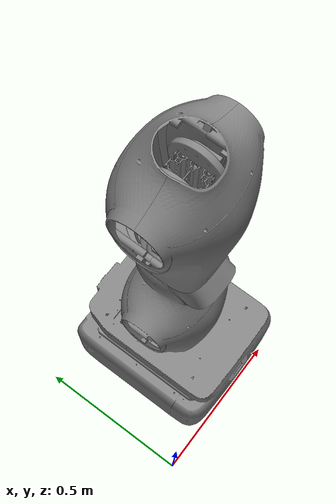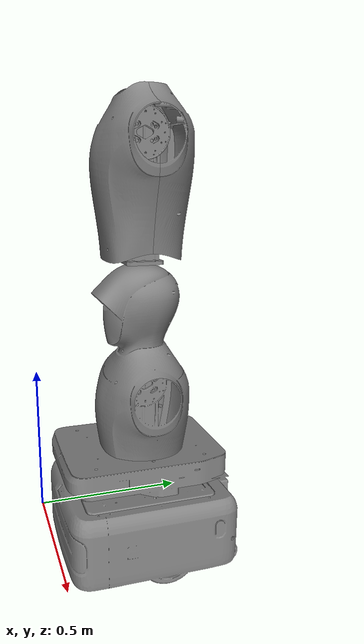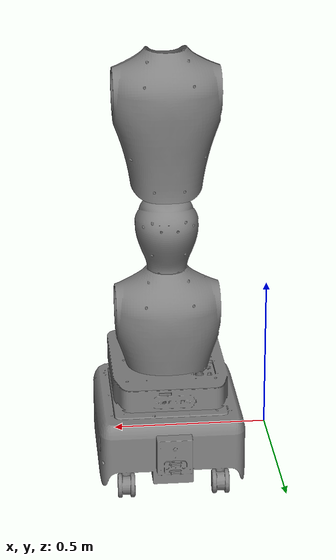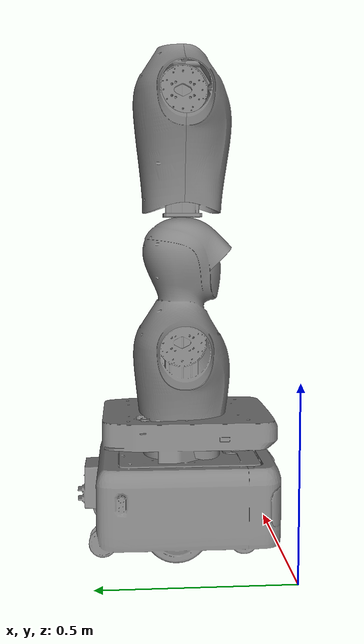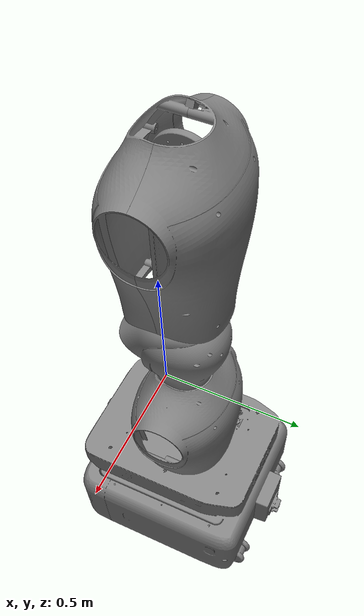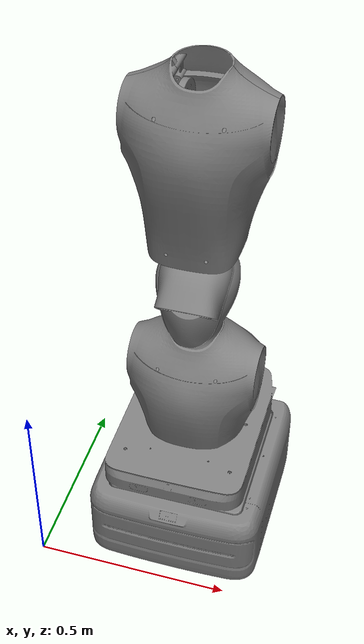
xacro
<?xml version="1.0"?>
<robot xmlns:xacro="http://ros.org/wiki/xacro" name="dual_ar5_torso">
  <material name="torso_grey">
    <color rgba="0.5 0.5 0.5 1.0"/>
  </material>

  <link name="torso_base_link">
    <!-- Body -->
    <visual>
      <origin xyz="0.348435 0.2626025 0.210286" rpy="0 0 0"/>
      <geometry>
        <mesh filename="file:///home/omen/Downloads/ar5_l6/meshes/body/lm0310_body.stl" scale="0.001 0.001 0.001"/>
      </geometry>
      <material name="torso_grey"/>
    </visual>
    <collision>
      <origin xyz="0.348435 0.2626025 0.210286" rpy="0 0 0"/>
      <geometry>
        <mesh filename="file:///home/omen/Downloads/ar5_l6/meshes/body/lm0310_body.stl" scale="0.001 0.001 0.001"/>
      </geometry>
    </collision>

    <!-- Wheelbase -->
    <visual>
      <origin xyz="0 0 0" rpy="0 0 0"/>
      <geometry>
        <mesh filename="file:///home/omen/Downloads/ar5_l6/meshes/body/lm0310_wheelbase.stl" scale="0.001 0.001 0.001"/>
      </geometry>
      <material name="torso_grey"/>
    </visual>
    <collision>
      <origin xyz="0 0 0" rpy="0 0 0"/>
      <geometry>
        <mesh filename="file:///home/omen/Downloads/ar5_l6/meshes/body/lm0310_wheelbase.stl" scale="0.001 0.001 0.001"/>
      </geometry>
    </collision>

    <!-- Base Plate -->
    <visual>
      <origin xyz="0 0 0" rpy="0 0 0"/>
      <geometry>
        <mesh filename="file:///home/omen/Downloads/ar5_l6/meshes/body/lm0310_base_plate.STL" scale="0.001 0.001 0.001"/>
      </geometry>
      <material name="torso_grey"/>
    </visual>
    <collision>
      <origin xyz="0 0 0" rpy="0 0 0"/>
      <geometry>
        <mesh filename="file:///home/omen/Downloads/ar5_l6/meshes/body/lm0310_base_plate.STL" scale="0.001 0.001 0.001"/>
      </geometry>
    </collision>

    <!-- Column -->
    <visual>
      <origin xyz="0 0 0" rpy="0 0 0"/>
      <geometry>
        <mesh filename="file:///home/omen/Downloads/ar5_l6/meshes/body/lm0310_column.STL" scale="0.001 0.001 0.001"/>
      </geometry>
      <material name="torso_grey"/>
    </visual>
    <collision>
      <origin xyz="0 0 0" rpy="0 0 0"/>
      <geometry>
        <mesh filename="file:///home/omen/Downloads/ar5_l6/meshes/body/lm0310_column.STL" scale="0.001 0.001 0.001"/>
      </geometry>
    </collision>

    <!-- Chest Back -->
    <visual>
      <origin xyz="0 0 0" rpy="0 0 0"/>
      <geometry>
        <mesh filename="file:///home/omen/Downloads/ar5_l6/meshes/body/lm0310_chest_back.STL" scale="0.001 0.001 0.001"/>
      </geometry>
      <material name="torso_grey"/>
    </visual>
    <collision>
      <origin xyz="0 0 0" rpy="0 0 0"/>
      <geometry>
        <mesh filename="file:///home/omen/Downloads/ar5_l6/meshes/body/lm0310_chest_back.STL" scale="0.001 0.001 0.001"/>
      </geometry>
    </collision>

    <!-- Chest Front -->
    <visual>
      <origin xyz="0 0 0" rpy="0 0 0"/>
      <geometry>
        <mesh filename="file:///home/omen/Downloads/ar5_l6/meshes/body/lm0310_chest_front.STL" scale="0.001 0.001 0.001"/>
      </geometry>
      <material name="torso_grey"/>
    </visual>
    <collision>
      <origin xyz="0 0 0" rpy="0 0 0"/>
      <geometry>
        <mesh filename="file:///home/omen/Downloads/ar5_l6/meshes/body/lm0310_chest_front.STL" scale="0.001 0.001 0.001"/>
      </geometry>
    </collision>

    <!-- Arm Bracket Left -->
    <visual>
      <origin xyz="0 0 0" rpy="0 0 0"/>
      <geometry>
        <mesh filename="file:///home/omen/Downloads/ar5_l6/meshes/body/lm0310_arm_bracket_l.STL" scale="0.001 0.001 0.001"/>
      </geometry>
      <material name="torso_grey"/>
    </visual>
    <collision>
      <origin xyz="0 0 0" rpy="0 0 0"/>
      <geometry>
        <mesh filename="file:///home/omen/Downloads/ar5_l6/meshes/body/lm0310_arm_bracket_l.STL" scale="0.001 0.001 0.001"/>
      </geometry>
    </collision>

    <!-- Arm Bracket Right -->
    <visual>
      <origin xyz="0 0 0" rpy="0 0 0"/>
      <geometry>
        <mesh filename="file:///home/omen/Downloads/ar5_l6/meshes/body/lm0310_arm_bracket_r.STL" scale="0.001 0.001 0.001"/>
      </geometry>
      <material name="torso_grey"/>
    </visual>
    <collision>
      <origin xyz="0 0 0" rpy="0 0 0"/>
      <geometry>
        <mesh filename="file:///home/omen/Downloads/ar5_l6/meshes/body/lm0310_arm_bracket_r.STL" scale="0.001 0.001 0.001"/>
      </geometry>
    </collision>

    <inertial>
      <mass value="100.0"/>
      <inertia ixx="1.0" ixy="0.0" ixz="0.0" iyy="1.0" iyz="0.0" izz="1.0"/>
    </inertial>
  </link>
</robot>
